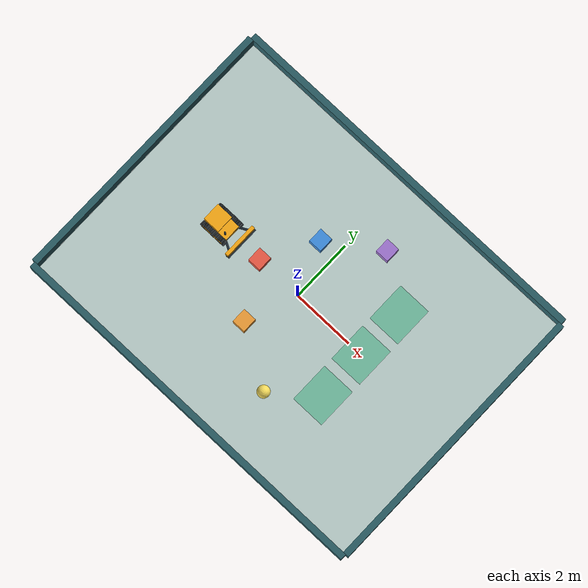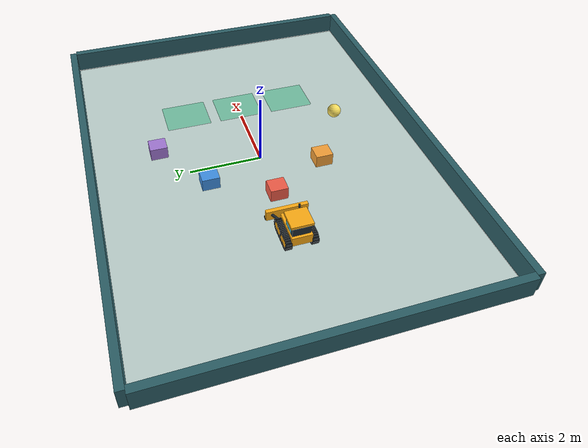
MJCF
<mujoco model="Bulldozer Playground">
  <compiler angle="degree" autolimits="true" />
  <option timestep="0.005" integrator="implicitfast" cone="elliptic" iterations="60" />
  <visual>
    <global offwidth="1280" offheight="800" />
    <quality shadowsize="2048" />
    <headlight ambient="0.2 0.2 0.2" diffuse="0.4 0.4 0.4" />
    <map znear="0.01" />
  </visual>
  <default>
    <geom friction="0.7 0.005 0.0001" solref="0.012 1" solimp="0.95 0.99 0.001" />
    <joint damping="0.05" armature="0.01" />
    <default class="decor">
      <geom contype="0" conaffinity="0" mass="0" />
    </default>
    <default class="wheel">
      <joint type="hinge" axis="0 1 0" />
      <geom type="cylinder" size="0.18 0.065" quat="0.70710678 0.70710678 0 0" rgba="0.075 0.09 0.11 1" mass="0.65" friction="1.0 0.005 0.0001" condim="4" />
    </default>
  </default>
  <asset>
    <texture name="floor_tex" type="2d" builtin="checker" rgb1="0.72 0.80 0.79" rgb2="0.77 0.84 0.82" width="512" height="512" />
    <material name="floor" texture="floor_tex" texrepeat="12 9" reflectance="0.05" />
    <material name="yellow" rgba="1 0.68 0.08 1" specular="0.35" shininess="0.3" />
    <material name="dark" rgba="0.12 0.17 0.21 1" />
  </asset>
  <worldbody>
    <light pos="-3 -3 7" dir="0.3 0.3 -1" directional="true" diffuse="0.5 0.5 0.5" />
    <geom name="floor" type="plane" size="6 4.5 0.1" material="floor" />
    <geom type="box" pos="0 4.6 0.3" size="6.1 0.1 0.3" rgba="0.17 0.37 0.4 1" />
    <geom type="box" pos="0 -4.6 0.3" size="6.1 0.1 0.3" rgba="0.17 0.37 0.4 1" />
    <geom type="box" pos="6.1 0 0.3" size="0.1 4.5 0.3" rgba="0.17 0.37 0.4 1" />
    <geom type="box" pos="-6.1 0 0.3" size="0.1 4.5 0.3" rgba="0.17 0.37 0.4 1" />
    <geom class="decor" type="box" pos="2.5 0 0.002" size="0.55 0.65 0.002" rgba="0.3 0.75 0.57 0.6" />
    <geom class="decor" type="box" pos="2.5 1.6 0.002" size="0.55 0.65 0.002" rgba="0.3 0.75 0.57 0.6" />
    <geom class="decor" type="box" pos="2.5 -1.6 0.002" size="0.55 0.65 0.002" rgba="0.3 0.75 0.57 0.6" />
    <body name="dozer" pos="-3 0 0.30">
      <freejoint name="base" />
      <geom name="chassis" type="box" size="0.43 0.27 0.13" mass="15" material="yellow" />
      <geom class="decor" type="box" pos="-0.13 0 0.25" size="0.23 0.24 0.19" material="dark" />
      <geom class="decor" type="box" pos="-0.13 0 0.46" size="0.28 0.29 0.035" material="yellow" />
      <geom class="decor" type="box" pos="0.106 0 0.28" size="0.005 0.2 0.11" rgba="0.3 0.72 0.8 1" />
      <geom class="decor" type="box" pos="-0.13 -0.245 0.28" size="0.18 0.005 0.11" rgba="0.3 0.72 0.8 1" />
      <geom class="decor" type="box" pos="-0.13 0.245 0.28" size="0.18 0.005 0.11" rgba="0.3 0.72 0.8 1" />
      <geom class="decor" type="cylinder" pos="0.30 -0.17 0.3" size="0.026 0.16" material="dark" />
      <geom class="decor" type="box" pos="0.42 -0.18 0.06" size="0.015 0.055 0.035" rgba="1 0.97 0.7 1" />
      <geom class="decor" type="box" pos="0.42 0.18 0.06" size="0.015 0.055 0.035" rgba="1 0.97 0.7 1" />
      <body name="left_front" pos="0.29 0.34 -0.12">
        <joint name="lf" class="wheel" />
        <geom class="wheel" />
        <geom class="decor" type="cylinder" pos="0 0.068 0" size="0.095 0.007" quat="0.7071 0.7071 0 0" material="yellow" />
      </body>
      <body name="left_rear" pos="-0.29 0.34 -0.12">
        <joint name="lr" class="wheel" />
        <geom class="wheel" />
        <geom class="decor" type="cylinder" pos="0 0.068 0" size="0.095 0.007" quat="0.7071 0.7071 0 0" material="yellow" />
      </body>
      <body name="right_front" pos="0.29 -0.34 -0.12">
        <joint name="rf" class="wheel" />
        <geom class="wheel" />
        <geom class="decor" type="cylinder" pos="0 -0.068 0" size="0.095 0.007" quat="0.7071 0.7071 0 0" material="yellow" />
      </body>
      <body name="right_rear" pos="-0.29 -0.34 -0.12">
        <joint name="rr" class="wheel" />
        <geom class="wheel" />
        <geom class="decor" type="cylinder" pos="0 -0.068 0" size="0.095 0.007" quat="0.7071 0.7071 0 0" material="yellow" />
      </body>
      <body name="blade" pos="0.72 0 -0.14">
        <joint name="lift" type="slide" axis="0 0 1" range="0 0.5" damping="15" />
        <geom name="blade_face" type="box" size="0.055 0.56 0.14" mass="1.5" material="yellow" />
        <geom type="box" pos="0.035 0 -0.125" size="0.06 0.57 0.02" mass="0.2" material="dark" />
        <geom class="decor" type="capsule" fromto="-0.4 0.22 0.03 -0.06 0.4 0.03" size="0.035" material="dark" />
        <geom class="decor" type="capsule" fromto="-0.4 -0.22 0.03 -0.06 -0.4 0.03" size="0.035" material="dark" />
      </body>
      <geom class="decor" type="box" pos="0 0.34 -.12" size=".29 .064 .125" rgba=".065 .078 .09 1" />
      <geom class="decor" type="cylinder" pos="-0.13 0.409 -.14" size=".09 .006" quat=".70710678 .70710678 0 0" material="yellow" />
      <geom class="decor" type="cylinder" pos="0.13 0.409 -.14" size=".09 .006" quat=".70710678 .70710678 0 0" material="yellow" />
      <geom name="track_left_0" class="decor" type="box" pos="-0.29 0.34 0.048000000000000015" quat="1.0 0 0.0 0" size=".025 .082 .012" rgba=".12 .145 .16 1" />
      <geom name="track_left_1" class="decor" type="box" pos="-0.2316953912735218 0.34 0.048000000000000015" quat="1.0 0 0.0 0" size=".025 .082 .012" rgba=".12 .145 .16 1" />
      <geom name="track_left_2" class="decor" type="box" pos="-0.17339078254704363 0.34 0.048000000000000015" quat="1.0 0 0.0 0" size=".025 .082 .012" rgba=".12 .145 .16 1" />
      <geom name="track_left_3" class="decor" type="box" pos="-0.11508617382056546 0.34 0.048000000000000015" quat="1.0 0 0.0 0" size=".025 .082 .012" rgba=".12 .145 .16 1" />
      <geom name="track_left_4" class="decor" type="box" pos="-0.05678156509408727 0.34 0.048000000000000015" quat="1.0 0 0.0 0" size=".025 .082 .012" rgba=".12 .145 .16 1" />
      <geom name="track_left_5" class="decor" type="box" pos="0.0015230436323909191 0.34 0.048000000000000015" quat="1.0 0 0.0 0" size=".025 .082 .012" rgba=".12 .145 .16 1" />
      <geom name="track_left_6" class="decor" type="box" pos="0.059827652358869055 0.34 0.048000000000000015" quat="1.0 0 0.0 0" size=".025 .082 .012" rgba=".12 .145 .16 1" />
      <geom name="track_left_7" class="decor" type="box" pos="0.11813226108534725 0.34 0.048000000000000015" quat="1.0 0 0.0 0" size=".025 .082 .012" rgba=".12 .145 .16 1" />
      <geom name="track_left_8" class="decor" type="box" pos="0.17643686981182544 0.34 0.048000000000000015" quat="1.0 0 0.0 0" size=".025 .082 .012" rgba=".12 .145 .16 1" />
      <geom name="track_left_9" class="decor" type="box" pos="0.23474147853830368 0.34 0.048000000000000015" quat="1.0 0 0.0 0" size=".025 .082 .012" rgba=".12 .145 .16 1" />
      <geom name="track_left_10" class="decor" type="box" pos="0.29304592036719 0.34 0.04797238573383644" quat="0.9999589064976805 0 0.009065611725802098 0" size=".025 .082 .012" rgba=".12 .145 .16 1" />
      <geom name="track_left_11" class="decor" type="box" pos="0.3499961543257781 0.34 0.03692183234374183" quat="0.9833764604299836 0 0.18157845982438814 0" size=".025 .082 .012" rgba=".12 .145 .16 1" />
      <geom name="track_left_12" class="decor" type="box" pos="0.3997924168313776 0.34 0.007159841169785325" quat="0.9372576530727336 0 0.34863747899012715 0" size=".025 .082 .012" rgba=".12 .145 .16 1" />
      <geom name="track_left_13" class="decor" type="box" pos="0.4364969766338123 0.34 -0.03776475307295389" quat="0.8629876932560782 0 0.505224941277203 0" size=".025 .082 .012" rgba=".12 .145 .16 1" />
      <geom name="track_left_14" class="decor" type="box" pos="0.45573316366194205 0.34 -0.0924951192948609" quat="0.7627973282618328 0 0.6466376388647739 0" size=".025 .082 .012" rgba=".12 .145 .16 1" />
      <geom name="track_left_15" class="decor" type="box" pos="0.4552072453522372 0.34 -0.1505051812504972" quat="0.6396958418559604 0 0.768628148009292 0" size=".025 .082 .012" rgba=".12 .145 .16 1" />
      <geom name="track_left_16" class="decor" type="box" pos="0.4349819324670211 0.34 -0.2048777901345702" quat="0.4973806684637012 0 0.8675324032211141 0" size=".025 .082 .012" rgba=".12 .145 .16 1" />
      <geom name="track_left_17" class="decor" type="box" pos="0.3974689014318012 0.34 -0.2491295288655612" quat="0.3401263382852813 0 0.9403797498907802 0" size=".025 .082 .012" rgba=".12 .145 .16 1" />
      <geom name="track_left_18" class="decor" type="box" pos="0.3471412248319271 0.34 -0.2779837979816511" quat="0.17265608895897566 0 0.9849821698616632 0" size=".025 .082 .012" rgba=".12 .145 .16 1" />
      <geom name="track_left_19" class="decor" type="box" pos="0.28999999999999987 0.34 -0.28800000000000003" quat="6.123233995736766e-17 0 1.0 0" size=".025 .082 .012" rgba=".12 .145 .16 1" />
      <geom name="track_left_20" class="decor" type="box" pos="0.23169539127352162 0.34 -0.28800000000000003" quat="6.123233995736766e-17 0 1.0 0" size=".025 .082 .012" rgba=".12 .145 .16 1" />
      <geom name="track_left_21" class="decor" type="box" pos="0.17339078254704338 0.34 -0.28800000000000003" quat="6.123233995736766e-17 0 1.0 0" size=".025 .082 .012" rgba=".12 .145 .16 1" />
      <geom name="track_left_22" class="decor" type="box" pos="0.11508617382056535 0.34 -0.28800000000000003" quat="6.123233995736766e-17 0 1.0 0" size=".025 .082 .012" rgba=".12 .145 .16 1" />
      <geom name="track_left_23" class="decor" type="box" pos="0.056781565094087105 0.34 -0.28800000000000003" quat="6.123233995736766e-17 0 1.0 0" size=".025 .082 .012" rgba=".12 .145 .16 1" />
      <geom name="track_left_24" class="decor" type="box" pos="-0.0015230436323909191 0.34 -0.28800000000000003" quat="6.123233995736766e-17 0 1.0 0" size=".025 .082 .012" rgba=".12 .145 .16 1" />
      <geom name="track_left_25" class="decor" type="box" pos="-0.059827652358869166 0.34 -0.28800000000000003" quat="6.123233995736766e-17 0 1.0 0" size=".025 .082 .012" rgba=".12 .145 .16 1" />
      <geom name="track_left_26" class="decor" type="box" pos="-0.11813226108534741 0.34 -0.28800000000000003" quat="6.123233995736766e-17 0 1.0 0" size=".025 .082 .012" rgba=".12 .145 .16 1" />
      <geom name="track_left_27" class="decor" type="box" pos="-0.17643686981182544 0.34 -0.28800000000000003" quat="6.123233995736766e-17 0 1.0 0" size=".025 .082 .012" rgba=".12 .145 .16 1" />
      <geom name="track_left_28" class="decor" type="box" pos="-0.2347414785383038 0.34 -0.28800000000000003" quat="6.123233995736766e-17 0 1.0 0" size=".025 .082 .012" rgba=".12 .145 .16 1" />
      <geom name="track_left_29" class="decor" type="box" pos="-0.2930459203671899 0.34 -0.28797238573383643" quat="-0.009065611725801705 0 0.9999589064976805 0" size=".025 .082 .012" rgba=".12 .145 .16 1" />
      <geom name="track_left_30" class="decor" type="box" pos="-0.3499961543257781 0.34 -0.2769218323437418" quat="-0.18157845982438808 0 0.9833764604299836 0" size=".025 .082 .012" rgba=".12 .145 .16 1" />
      <geom name="track_left_31" class="decor" type="box" pos="-0.3997924168313777 0.34 -0.24715984116978526" quat="-0.3486374789901274 0 0.9372576530727335 0" size=".025 .082 .012" rgba=".12 .145 .16 1" />
      <geom name="track_left_32" class="decor" type="box" pos="-0.4364969766338124 0.34 -0.20223524692704603" quat="-0.5052249412772031 0 0.862987693256078 0" size=".025 .082 .012" rgba=".12 .145 .16 1" />
      <geom name="track_left_33" class="decor" type="box" pos="-0.45573316366194205 0.34 -0.1475048807051389" quat="-0.6466376388647745 0 0.7627973282618322 0" size=".025 .082 .012" rgba=".12 .145 .16 1" />
      <geom name="track_left_34" class="decor" type="box" pos="-0.4552072453522372 0.34 -0.08949481874950248" quat="-0.7686281480092925 0 0.63969584185596 0" size=".025 .082 .012" rgba=".12 .145 .16 1" />
      <geom name="track_left_35" class="decor" type="box" pos="-0.43498193246702094 0.34 -0.03512220986542956" quat="-0.8675324032211146 0 0.4973806684637003 0" size=".025 .082 .012" rgba=".12 .145 .16 1" />
      <geom name="track_left_36" class="decor" type="box" pos="-0.397468901431801 0.34 0.009129528865561343" quat="-0.9403797498907804 0 0.34012633828528077 0" size=".025 .082 .012" rgba=".12 .145 .16 1" />
      <geom name="track_left_37" class="decor" type="box" pos="-0.34714122483192733 0.34 0.03798379798165108" quat="-0.9849821698616631 0 0.17265608895897636 0" size=".025 .082 .012" rgba=".12 .145 .16 1" />
      <geom class="decor" type="box" pos="0 -0.34 -.12" size=".29 .064 .125" rgba=".065 .078 .09 1" />
      <geom class="decor" type="cylinder" pos="-0.13 -0.409 -.14" size=".09 .006" quat=".70710678 .70710678 0 0" material="yellow" />
      <geom class="decor" type="cylinder" pos="0.13 -0.409 -.14" size=".09 .006" quat=".70710678 .70710678 0 0" material="yellow" />
      <geom name="track_right_0" class="decor" type="box" pos="-0.29 -0.34 0.048000000000000015" quat="1.0 0 0.0 0" size=".025 .082 .012" rgba=".12 .145 .16 1" />
      <geom name="track_right_1" class="decor" type="box" pos="-0.2316953912735218 -0.34 0.048000000000000015" quat="1.0 0 0.0 0" size=".025 .082 .012" rgba=".12 .145 .16 1" />
      <geom name="track_right_2" class="decor" type="box" pos="-0.17339078254704363 -0.34 0.048000000000000015" quat="1.0 0 0.0 0" size=".025 .082 .012" rgba=".12 .145 .16 1" />
      <geom name="track_right_3" class="decor" type="box" pos="-0.11508617382056546 -0.34 0.048000000000000015" quat="1.0 0 0.0 0" size=".025 .082 .012" rgba=".12 .145 .16 1" />
      <geom name="track_right_4" class="decor" type="box" pos="-0.05678156509408727 -0.34 0.048000000000000015" quat="1.0 0 0.0 0" size=".025 .082 .012" rgba=".12 .145 .16 1" />
      <geom name="track_right_5" class="decor" type="box" pos="0.0015230436323909191 -0.34 0.048000000000000015" quat="1.0 0 0.0 0" size=".025 .082 .012" rgba=".12 .145 .16 1" />
      <geom name="track_right_6" class="decor" type="box" pos="0.059827652358869055 -0.34 0.048000000000000015" quat="1.0 0 0.0 0" size=".025 .082 .012" rgba=".12 .145 .16 1" />
      <geom name="track_right_7" class="decor" type="box" pos="0.11813226108534725 -0.34 0.048000000000000015" quat="1.0 0 0.0 0" size=".025 .082 .012" rgba=".12 .145 .16 1" />
      <geom name="track_right_8" class="decor" type="box" pos="0.17643686981182544 -0.34 0.048000000000000015" quat="1.0 0 0.0 0" size=".025 .082 .012" rgba=".12 .145 .16 1" />
      <geom name="track_right_9" class="decor" type="box" pos="0.23474147853830368 -0.34 0.048000000000000015" quat="1.0 0 0.0 0" size=".025 .082 .012" rgba=".12 .145 .16 1" />
      <geom name="track_right_10" class="decor" type="box" pos="0.29304592036719 -0.34 0.04797238573383644" quat="0.9999589064976805 0 0.009065611725802098 0" size=".025 .082 .012" rgba=".12 .145 .16 1" />
      <geom name="track_right_11" class="decor" type="box" pos="0.3499961543257781 -0.34 0.03692183234374183" quat="0.9833764604299836 0 0.18157845982438814 0" size=".025 .082 .012" rgba=".12 .145 .16 1" />
      <geom name="track_right_12" class="decor" type="box" pos="0.3997924168313776 -0.34 0.007159841169785325" quat="0.9372576530727336 0 0.34863747899012715 0" size=".025 .082 .012" rgba=".12 .145 .16 1" />
      <geom name="track_right_13" class="decor" type="box" pos="0.4364969766338123 -0.34 -0.03776475307295389" quat="0.8629876932560782 0 0.505224941277203 0" size=".025 .082 .012" rgba=".12 .145 .16 1" />
      <geom name="track_right_14" class="decor" type="box" pos="0.45573316366194205 -0.34 -0.0924951192948609" quat="0.7627973282618328 0 0.6466376388647739 0" size=".025 .082 .012" rgba=".12 .145 .16 1" />
      <geom name="track_right_15" class="decor" type="box" pos="0.4552072453522372 -0.34 -0.1505051812504972" quat="0.6396958418559604 0 0.768628148009292 0" size=".025 .082 .012" rgba=".12 .145 .16 1" />
      <geom name="track_right_16" class="decor" type="box" pos="0.4349819324670211 -0.34 -0.2048777901345702" quat="0.4973806684637012 0 0.8675324032211141 0" size=".025 .082 .012" rgba=".12 .145 .16 1" />
      <geom name="track_right_17" class="decor" type="box" pos="0.3974689014318012 -0.34 -0.2491295288655612" quat="0.3401263382852813 0 0.9403797498907802 0" size=".025 .082 .012" rgba=".12 .145 .16 1" />
      <geom name="track_right_18" class="decor" type="box" pos="0.3471412248319271 -0.34 -0.2779837979816511" quat="0.17265608895897566 0 0.9849821698616632 0" size=".025 .082 .012" rgba=".12 .145 .16 1" />
      <geom name="track_right_19" class="decor" type="box" pos="0.28999999999999987 -0.34 -0.28800000000000003" quat="6.123233995736766e-17 0 1.0 0" size=".025 .082 .012" rgba=".12 .145 .16 1" />
      <geom name="track_right_20" class="decor" type="box" pos="0.23169539127352162 -0.34 -0.28800000000000003" quat="6.123233995736766e-17 0 1.0 0" size=".025 .082 .012" rgba=".12 .145 .16 1" />
      <geom name="track_right_21" class="decor" type="box" pos="0.17339078254704338 -0.34 -0.28800000000000003" quat="6.123233995736766e-17 0 1.0 0" size=".025 .082 .012" rgba=".12 .145 .16 1" />
      <geom name="track_right_22" class="decor" type="box" pos="0.11508617382056535 -0.34 -0.28800000000000003" quat="6.123233995736766e-17 0 1.0 0" size=".025 .082 .012" rgba=".12 .145 .16 1" />
      <geom name="track_right_23" class="decor" type="box" pos="0.056781565094087105 -0.34 -0.28800000000000003" quat="6.123233995736766e-17 0 1.0 0" size=".025 .082 .012" rgba=".12 .145 .16 1" />
      <geom name="track_right_24" class="decor" type="box" pos="-0.0015230436323909191 -0.34 -0.28800000000000003" quat="6.123233995736766e-17 0 1.0 0" size=".025 .082 .012" rgba=".12 .145 .16 1" />
      <geom name="track_right_25" class="decor" type="box" pos="-0.059827652358869166 -0.34 -0.28800000000000003" quat="6.123233995736766e-17 0 1.0 0" size=".025 .082 .012" rgba=".12 .145 .16 1" />
      <geom name="track_right_26" class="decor" type="box" pos="-0.11813226108534741 -0.34 -0.28800000000000003" quat="6.123233995736766e-17 0 1.0 0" size=".025 .082 .012" rgba=".12 .145 .16 1" />
      <geom name="track_right_27" class="decor" type="box" pos="-0.17643686981182544 -0.34 -0.28800000000000003" quat="6.123233995736766e-17 0 1.0 0" size=".025 .082 .012" rgba=".12 .145 .16 1" />
      <geom name="track_right_28" class="decor" type="box" pos="-0.2347414785383038 -0.34 -0.28800000000000003" quat="6.123233995736766e-17 0 1.0 0" size=".025 .082 .012" rgba=".12 .145 .16 1" />
      <geom name="track_right_29" class="decor" type="box" pos="-0.2930459203671899 -0.34 -0.28797238573383643" quat="-0.009065611725801705 0 0.9999589064976805 0" size=".025 .082 .012" rgba=".12 .145 .16 1" />
      <geom name="track_right_30" class="decor" type="box" pos="-0.3499961543257781 -0.34 -0.2769218323437418" quat="-0.18157845982438808 0 0.9833764604299836 0" size=".025 .082 .012" rgba=".12 .145 .16 1" />
      <geom name="track_right_31" class="decor" type="box" pos="-0.3997924168313777 -0.34 -0.24715984116978526" quat="-0.3486374789901274 0 0.9372576530727335 0" size=".025 .082 .012" rgba=".12 .145 .16 1" />
      <geom name="track_right_32" class="decor" type="box" pos="-0.4364969766338124 -0.34 -0.20223524692704603" quat="-0.5052249412772031 0 0.862987693256078 0" size=".025 .082 .012" rgba=".12 .145 .16 1" />
      <geom name="track_right_33" class="decor" type="box" pos="-0.45573316366194205 -0.34 -0.1475048807051389" quat="-0.6466376388647745 0 0.7627973282618322 0" size=".025 .082 .012" rgba=".12 .145 .16 1" />
      <geom name="track_right_34" class="decor" type="box" pos="-0.4552072453522372 -0.34 -0.08949481874950248" quat="-0.7686281480092925 0 0.63969584185596 0" size=".025 .082 .012" rgba=".12 .145 .16 1" />
      <geom name="track_right_35" class="decor" type="box" pos="-0.43498193246702094 -0.34 -0.03512220986542956" quat="-0.8675324032211146 0 0.4973806684637003 0" size=".025 .082 .012" rgba=".12 .145 .16 1" />
      <geom name="track_right_36" class="decor" type="box" pos="-0.397468901431801 -0.34 0.009129528865561343" quat="-0.9403797498907804 0 0.34012633828528077 0" size=".025 .082 .012" rgba=".12 .145 .16 1" />
      <geom name="track_right_37" class="decor" type="box" pos="-0.34714122483192733 -0.34 0.03798379798165108" quat="-0.9849821698616631 0 0.17265608895897636 0" size=".025 .082 .012" rgba=".12 .145 .16 1" />
    </body>
    <body name="block_1" pos="-1.5 0 0.18">
      <freejoint />
      <geom type="box" size="0.22 0.24 0.18" mass="0.7" rgba="0.95 0.36 0.28 1" />
    </body>
    <body name="block_2" pos="-0.6 1.6 0.18">
      <freejoint />
      <geom type="box" size="0.22 0.24 0.18" mass="0.7" rgba="0.25 0.57 0.90 1" />
    </body>
    <body name="block_3" pos="-0.6 -1.6 0.18">
      <freejoint />
      <geom type="box" size="0.22 0.24 0.18" mass="0.7" rgba="0.96 0.63 0.22 1" />
    </body>
    <body name="block_4" pos="1 2.7 0.18">
      <freejoint />
      <geom type="box" size="0.22 0.24 0.18" mass="0.7" rgba="0.64 0.47 0.84 1" />
    </body>
    <body name="ball" pos="1.2 -2.7 0.20">
      <freejoint />
      <geom type="sphere" size="0.20" mass="0.25" rgba="0.97 0.87 0.36 1" friction="0.7 0.015 0.002" condim="6" />
    </body>
  </worldbody>
  <actuator>
    <velocity name="drive_lf" joint="lf" kv="8" ctrlrange="-8 8" forcerange="-15 15" />
    <velocity name="drive_lr" joint="lr" kv="8" ctrlrange="-8 8" forcerange="-15 15" />
    <velocity name="drive_rf" joint="rf" kv="8" ctrlrange="-8 8" forcerange="-15 15" />
    <velocity name="drive_rr" joint="rr" kv="8" ctrlrange="-8 8" forcerange="-15 15" />
    <position name="blade_lift" joint="lift" kp="1200" ctrlrange="0 0.5" forcerange="-250 250" />
  </actuator>
</mujoco>
